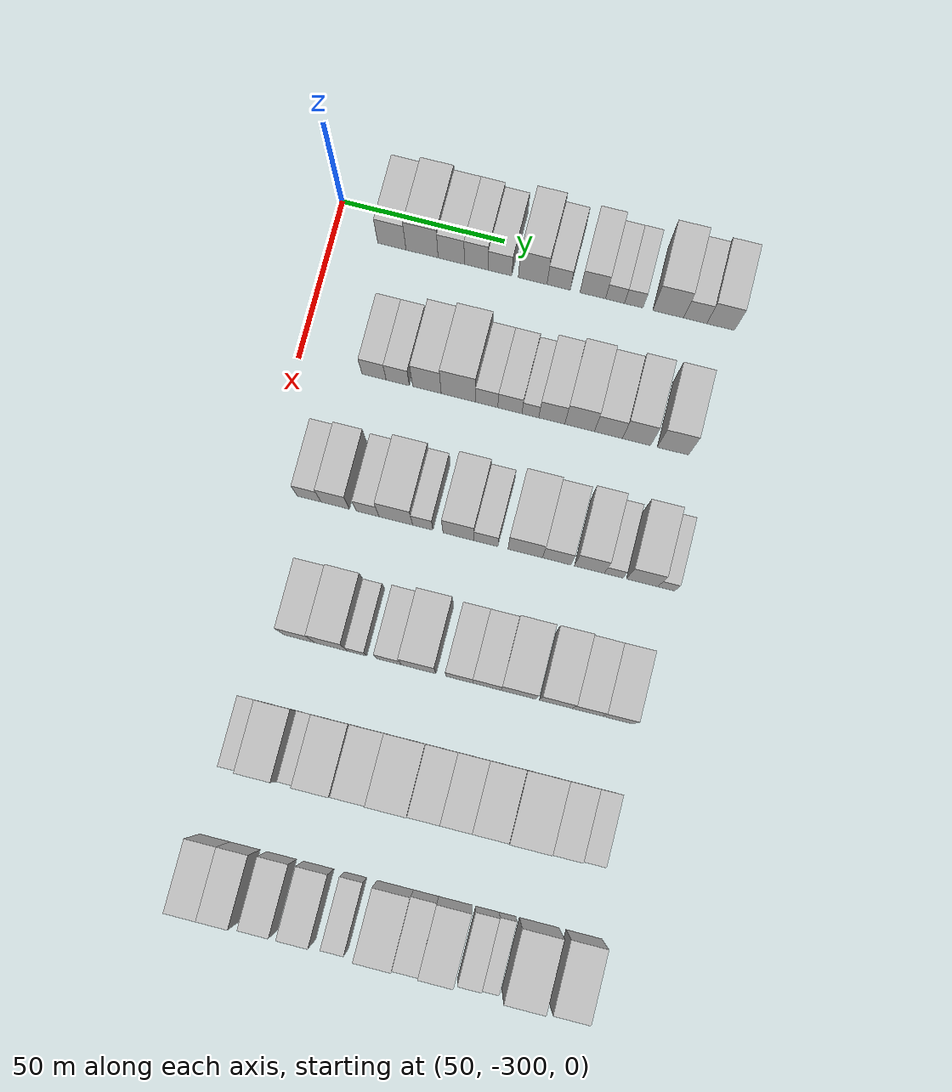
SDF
<sdf version="1.6">
 <world name="default">
  <model name="building_38">
   <static>1</static>
   <pose>50.0000 -282.0575 0 0.000000 0.000000 0.000000</pose>
   <link name="link">
    <pose>0 0 9.00 0 0 0</pose>
    <collision name="collision"><geometry><box><size>20.0000 8.7010 18.0000</size></box></geometry></collision>
    <visual name="visual">
     <cast_shadows>0</cast_shadows>
     <geometry><box><size>20.0000 8.7010 18.0000</size></box></geometry>
     <material>
      <script>
       <uri>model://HANNAS_wall/materials/scripts</uri>
       <uri>model://HANNAS_wall/materials/textures</uri>
       <name>vrc/HANNAS_wall</name>
      </script>
     </material>
    </visual>
   </link>
  </model>
  <model name="building_39">
   <static>1</static>
   <pose>50.0000 -272.7691 0 0.000000 0.000000 0.000000</pose>
   <link name="link">
    <pose>0 0 10.50 0 0 0</pose>
    <collision name="collision"><geometry><box><size>20.0000 9.8757 21.0000</size></box></geometry></collision>
    <visual name="visual">
     <cast_shadows>0</cast_shadows>
     <geometry><box><size>20.0000 9.8757 21.0000</size></box></geometry>
     <material>
      <script>
       <uri>model://HANNAS_wall/materials/scripts</uri>
       <uri>model://HANNAS_wall/materials/textures</uri>
       <name>vrc/HANNAS_wall</name>
      </script>
     </material>
    </visual>
   </link>
  </model>
  <model name="building_40">
   <static>1</static>
   <pose>50.0000 -263.8020 0 0.000000 0.000000 0.000000</pose>
   <link name="link">
    <pose>0 0 9.00 0 0 0</pose>
    <collision name="collision"><geometry><box><size>20.0000 8.0586 18.0000</size></box></geometry></collision>
    <visual name="visual">
     <cast_shadows>0</cast_shadows>
     <geometry><box><size>20.0000 8.0586 18.0000</size></box></geometry>
     <material>
      <script>
       <uri>model://HANNAS_wall/materials/scripts</uri>
       <uri>model://HANNAS_wall/materials/textures</uri>
       <name>vrc/HANNAS_wall</name>
      </script>
     </material>
    </visual>
   </link>
  </model>
  <model name="building_41">
   <static>1</static>
   <pose>50.0000 -256.1643 0 0.000000 0.000000 0.000000</pose>
   <link name="link">
    <pose>0 0 9.00 0 0 0</pose>
    <collision name="collision"><geometry><box><size>20.0000 7.2168 18.0000</size></box></geometry></collision>
    <visual name="visual">
     <cast_shadows>0</cast_shadows>
     <geometry><box><size>20.0000 7.2168 18.0000</size></box></geometry>
     <material>
      <script>
       <uri>model://HANNAS_wall/materials/scripts</uri>
       <uri>model://HANNAS_wall/materials/textures</uri>
       <name>vrc/HANNAS_wall</name>
      </script>
     </material>
    </visual>
   </link>
  </model>
  <model name="building_42">
   <static>1</static>
   <pose>50.0000 -248.8913 0 0.000000 0.000000 0.000000</pose>
   <link name="link">
    <pose>0 0 7.50 0 0 0</pose>
    <collision name="collision"><geometry><box><size>20.0000 7.3291 15.0000</size></box></geometry></collision>
    <visual name="visual">
     <cast_shadows>0</cast_shadows>
     <geometry><box><size>20.0000 7.3291 15.0000</size></box></geometry>
     <material>
      <script>
       <uri>model://HANNAS_wall/materials/scripts</uri>
       <uri>model://HANNAS_wall/materials/textures</uri>
       <name>vrc/HANNAS_wall</name>
      </script>
     </material>
    </visual>
   </link>
  </model>
  <model name="building_43">
   <static>1</static>
   <pose>50.0000 -238.8344 0 0.000000 0.000000 0.000000</pose>
   <link name="link">
    <pose>0 0 10.50 0 0 0</pose>
    <collision name="collision"><geometry><box><size>20.0000 8.7847 21.0000</size></box></geometry></collision>
    <visual name="visual">
     <cast_shadows>0</cast_shadows>
     <geometry><box><size>20.0000 8.7847 21.0000</size></box></geometry>
     <material>
      <script>
       <uri>model://HANNAS_wall/materials/scripts</uri>
       <uri>model://HANNAS_wall/materials/textures</uri>
       <name>vrc/HANNAS_wall</name>
      </script>
     </material>
    </visual>
   </link>
  </model>
  <model name="building_44">
   <static>1</static>
   <pose>50.0000 -230.8882 0 0.000000 0.000000 0.000000</pose>
   <link name="link">
    <pose>0 0 7.50 0 0 0</pose>
    <collision name="collision"><geometry><box><size>20.0000 7.1078 15.0000</size></box></geometry></collision>
    <visual name="visual">
     <cast_shadows>0</cast_shadows>
     <geometry><box><size>20.0000 7.1078 15.0000</size></box></geometry>
     <material>
      <script>
       <uri>model://HANNAS_wall/materials/scripts</uri>
       <uri>model://HANNAS_wall/materials/textures</uri>
       <name>vrc/HANNAS_wall</name>
      </script>
     </material>
    </visual>
   </link>
  </model>
  <model name="building_45">
   <static>1</static>
   <pose>50.0000 -220.4508 0 0.000000 0.000000 0.000000</pose>
   <link name="link">
    <pose>0 0 9.00 0 0 0</pose>
    <collision name="collision"><geometry><box><size>20.0000 7.7671 18.0000</size></box></geometry></collision>
    <visual name="visual">
     <cast_shadows>0</cast_shadows>
     <geometry><box><size>20.0000 7.7671 18.0000</size></box></geometry>
     <material>
      <script>
       <uri>model://HANNAS_wall/materials/scripts</uri>
       <uri>model://HANNAS_wall/materials/textures</uri>
       <name>vrc/HANNAS_wall</name>
      </script>
     </material>
    </visual>
   </link>
  </model>
  <model name="building_46">
   <static>1</static>
   <pose>50.0000 -213.6460 0 0.000000 0.000000 0.000000</pose>
   <link name="link">
    <pose>0 0 6.00 0 0 0</pose>
    <collision name="collision"><geometry><box><size>20.0000 5.8425 12.0000</size></box></geometry></collision>
    <visual name="visual">
     <cast_shadows>0</cast_shadows>
     <geometry><box><size>20.0000 5.8425 12.0000</size></box></geometry>
     <material>
      <script>
       <uri>model://HANNAS_wall/materials/scripts</uri>
       <uri>model://HANNAS_wall/materials/textures</uri>
       <name>vrc/HANNAS_wall</name>
      </script>
     </material>
    </visual>
   </link>
  </model>
  <model name="building_47">
   <static>1</static>
   <pose>50.0000 -207.9243 0 0.000000 0.000000 0.000000</pose>
   <link name="link">
    <pose>0 0 6.00 0 0 0</pose>
    <collision name="collision"><geometry><box><size>20.0000 5.6009 12.0000</size></box></geometry></collision>
    <visual name="visual">
     <cast_shadows>0</cast_shadows>
     <geometry><box><size>20.0000 5.6009 12.0000</size></box></geometry>
     <material>
      <script>
       <uri>model://HANNAS_wall/materials/scripts</uri>
       <uri>model://HANNAS_wall/materials/textures</uri>
       <name>vrc/HANNAS_wall</name>
      </script>
     </material>
    </visual>
   </link>
  </model>
  <model name="building_48">
   <static>1</static>
   <pose>50.0000 -197.4473 0 0.000000 0.000000 0.000000</pose>
   <link name="link">
    <pose>0 0 10.50 0 0 0</pose>
    <collision name="collision"><geometry><box><size>20.0000 9.3530 21.0000</size></box></geometry></collision>
    <visual name="visual">
     <cast_shadows>0</cast_shadows>
     <geometry><box><size>20.0000 9.3530 21.0000</size></box></geometry>
     <material>
      <script>
       <uri>model://HANNAS_wall/materials/scripts</uri>
       <uri>model://HANNAS_wall/materials/textures</uri>
       <name>vrc/HANNAS_wall</name>
      </script>
     </material>
    </visual>
   </link>
  </model>
  <model name="building_49">
   <static>1</static>
   <pose>50.0000 -189.2440 0 0.000000 0.000000 0.000000</pose>
   <link name="link">
    <pose>0 0 7.50 0 0 0</pose>
    <collision name="collision"><geometry><box><size>20.0000 7.0538 15.0000</size></box></geometry></collision>
    <visual name="visual">
     <cast_shadows>0</cast_shadows>
     <geometry><box><size>20.0000 7.0538 15.0000</size></box></geometry>
     <material>
      <script>
       <uri>model://HANNAS_wall/materials/scripts</uri>
       <uri>model://HANNAS_wall/materials/textures</uri>
       <name>vrc/HANNAS_wall</name>
      </script>
     </material>
    </visual>
   </link>
  </model>
  <model name="building_50">
   <static>1</static>
   <pose>50.0000 -181.5211 0 0.000000 0.000000 0.000000</pose>
   <link name="link">
    <pose>0 0 9.00 0 0 0</pose>
    <collision name="collision"><geometry><box><size>20.0000 8.3919 18.0000</size></box></geometry></collision>
    <visual name="visual">
     <cast_shadows>0</cast_shadows>
     <geometry><box><size>20.0000 8.3919 18.0000</size></box></geometry>
     <material>
      <script>
       <uri>model://HANNAS_wall/materials/scripts</uri>
       <uri>model://HANNAS_wall/materials/textures</uri>
       <name>vrc/HANNAS_wall</name>
      </script>
     </material>
    </visual>
   </link>
  </model>
  <model name="building_173">
   <static>1</static>
   <pose>90.0000 -276.9165 0 0.000000 0.000000 0.000000</pose>
   <link name="link">
    <pose>0 0 7.50 0 0 0</pose>
    <collision name="collision"><geometry><box><size>20.0000 7.3313 15.0000</size></box></geometry></collision>
    <visual name="visual">
     <cast_shadows>0</cast_shadows>
     <geometry><box><size>20.0000 7.3313 15.0000</size></box></geometry>
     <material>
      <script>
       <uri>model://HANNAS_wall/materials/scripts</uri>
       <uri>model://HANNAS_wall/materials/textures</uri>
       <name>vrc/HANNAS_wall</name>
      </script>
     </material>
    </visual>
   </link>
  </model>
  <model name="building_174">
   <static>1</static>
   <pose>90.0000 -269.7157 0 0.000000 0.000000 0.000000</pose>
   <link name="link">
    <pose>0 0 7.50 0 0 0</pose>
    <collision name="collision"><geometry><box><size>20.0000 7.0705 15.0000</size></box></geometry></collision>
    <visual name="visual">
     <cast_shadows>0</cast_shadows>
     <geometry><box><size>20.0000 7.0705 15.0000</size></box></geometry>
     <material>
      <script>
       <uri>model://HANNAS_wall/materials/scripts</uri>
       <uri>model://HANNAS_wall/materials/textures</uri>
       <name>vrc/HANNAS_wall</name>
      </script>
     </material>
    </visual>
   </link>
  </model>
  <model name="building_175">
   <static>1</static>
   <pose>90.0000 -260.8655 0 0.000000 0.000000 0.000000</pose>
   <link name="link">
    <pose>0 0 10.50 0 0 0</pose>
    <collision name="collision"><geometry><box><size>20.0000 8.6299 21.0000</size></box></geometry></collision>
    <visual name="visual">
     <cast_shadows>0</cast_shadows>
     <geometry><box><size>20.0000 8.6299 21.0000</size></box></geometry>
     <material>
      <script>
       <uri>model://HANNAS_wall/materials/scripts</uri>
       <uri>model://HANNAS_wall/materials/textures</uri>
       <name>vrc/HANNAS_wall</name>
      </script>
     </material>
    </visual>
   </link>
  </model>
  <model name="building_176">
   <static>1</static>
   <pose>90.0000 -251.3390 0 0.000000 0.000000 0.000000</pose>
   <link name="link">
    <pose>0 0 12.00 0 0 0</pose>
    <collision name="collision"><geometry><box><size>20.0000 10.4230 24.0000</size></box></geometry></collision>
    <visual name="visual">
     <cast_shadows>0</cast_shadows>
     <geometry><box><size>20.0000 10.4230 24.0000</size></box></geometry>
     <material>
      <script>
       <uri>model://HANNAS_wall/materials/scripts</uri>
       <uri>model://HANNAS_wall/materials/textures</uri>
       <name>vrc/HANNAS_wall</name>
      </script>
     </material>
    </visual>
   </link>
  </model>
  <model name="building_177">
   <static>1</static>
   <pose>90.0000 -242.7725 0 0.000000 0.000000 0.000000</pose>
   <link name="link">
    <pose>0 0 7.50 0 0 0</pose>
    <collision name="collision"><geometry><box><size>20.0000 6.7100 15.0000</size></box></geometry></collision>
    <visual name="visual">
     <cast_shadows>0</cast_shadows>
     <geometry><box><size>20.0000 6.7100 15.0000</size></box></geometry>
     <material>
      <script>
       <uri>model://HANNAS_wall/materials/scripts</uri>
       <uri>model://HANNAS_wall/materials/textures</uri>
       <name>vrc/HANNAS_wall</name>
      </script>
     </material>
    </visual>
   </link>
  </model>
  <model name="building_178">
   <static>1</static>
   <pose>90.0000 -235.7515 0 0.000000 0.000000 0.000000</pose>
   <link name="link">
    <pose>0 0 7.50 0 0 0</pose>
    <collision name="collision"><geometry><box><size>20.0000 7.3321 15.0000</size></box></geometry></collision>
    <visual name="visual">
     <cast_shadows>0</cast_shadows>
     <geometry><box><size>20.0000 7.3321 15.0000</size></box></geometry>
     <material>
      <script>
       <uri>model://HANNAS_wall/materials/scripts</uri>
       <uri>model://HANNAS_wall/materials/textures</uri>
       <name>vrc/HANNAS_wall</name>
      </script>
     </material>
    </visual>
   </link>
  </model>
  <model name="building_179">
   <static>1</static>
   <pose>90.0000 -229.5676 0 0.000000 0.000000 0.000000</pose>
   <link name="link">
    <pose>0 0 6.00 0 0 0</pose>
    <collision name="collision"><geometry><box><size>20.0000 5.0358 12.0000</size></box></geometry></collision>
    <visual name="visual">
     <cast_shadows>0</cast_shadows>
     <geometry><box><size>20.0000 5.0358 12.0000</size></box></geometry>
     <material>
      <script>
       <uri>model://HANNAS_wall/materials/scripts</uri>
       <uri>model://HANNAS_wall/materials/textures</uri>
       <name>vrc/HANNAS_wall</name>
      </script>
     </material>
    </visual>
   </link>
  </model>
  <model name="building_180">
   <static>1</static>
   <pose>90.0000 -223.1126 0 0.000000 0.000000 0.000000</pose>
   <link name="link">
    <pose>0 0 9.00 0 0 0</pose>
    <collision name="collision"><geometry><box><size>20.0000 7.8741 18.0000</size></box></geometry></collision>
    <visual name="visual">
     <cast_shadows>0</cast_shadows>
     <geometry><box><size>20.0000 7.8741 18.0000</size></box></geometry>
     <material>
      <script>
       <uri>model://HANNAS_wall/materials/scripts</uri>
       <uri>model://HANNAS_wall/materials/textures</uri>
       <name>vrc/HANNAS_wall</name>
      </script>
     </material>
    </visual>
   </link>
  </model>
  <model name="building_181">
   <static>1</static>
   <pose>90.0000 -214.7060 0 0.000000 0.000000 0.000000</pose>
   <link name="link">
    <pose>0 0 10.50 0 0 0</pose>
    <collision name="collision"><geometry><box><size>20.0000 8.9390 21.0000</size></box></geometry></collision>
    <visual name="visual">
     <cast_shadows>0</cast_shadows>
     <geometry><box><size>20.0000 8.9390 21.0000</size></box></geometry>
     <material>
      <script>
       <uri>model://HANNAS_wall/materials/scripts</uri>
       <uri>model://HANNAS_wall/materials/textures</uri>
       <name>vrc/HANNAS_wall</name>
      </script>
     </material>
    </visual>
   </link>
  </model>
  <model name="building_182">
   <static>1</static>
   <pose>90.0000 -206.0315 0 0.000000 0.000000 0.000000</pose>
   <link name="link">
    <pose>0 0 9.00 0 0 0</pose>
    <collision name="collision"><geometry><box><size>20.0000 8.4101 18.0000</size></box></geometry></collision>
    <visual name="visual">
     <cast_shadows>0</cast_shadows>
     <geometry><box><size>20.0000 8.4101 18.0000</size></box></geometry>
     <material>
      <script>
       <uri>model://HANNAS_wall/materials/scripts</uri>
       <uri>model://HANNAS_wall/materials/textures</uri>
       <name>vrc/HANNAS_wall</name>
      </script>
     </material>
    </visual>
   </link>
  </model>
  <model name="building_183">
   <static>1</static>
   <pose>90.0000 -197.5775 0 0.000000 0.000000 0.000000</pose>
   <link name="link">
    <pose>0 0 10.50 0 0 0</pose>
    <collision name="collision"><geometry><box><size>20.0000 8.4978 21.0000</size></box></geometry></collision>
    <visual name="visual">
     <cast_shadows>0</cast_shadows>
     <geometry><box><size>20.0000 8.4978 21.0000</size></box></geometry>
     <material>
      <script>
       <uri>model://HANNAS_wall/materials/scripts</uri>
       <uri>model://HANNAS_wall/materials/textures</uri>
       <name>vrc/HANNAS_wall</name>
      </script>
     </material>
    </visual>
   </link>
  </model>
  <model name="building_184">
   <static>1</static>
   <pose>90.0000 -186.6508 0 0.000000 0.000000 0.000000</pose>
   <link name="link">
    <pose>0 0 10.50 0 0 0</pose>
    <collision name="collision"><geometry><box><size>20.0000 9.3556 21.0000</size></box></geometry></collision>
    <visual name="visual">
     <cast_shadows>0</cast_shadows>
     <geometry><box><size>20.0000 9.3556 21.0000</size></box></geometry>
     <material>
      <script>
       <uri>model://HANNAS_wall/materials/scripts</uri>
       <uri>model://HANNAS_wall/materials/textures</uri>
       <name>vrc/HANNAS_wall</name>
      </script>
     </material>
    </visual>
   </link>
  </model>
  <model name="building_314">
   <static>1</static>
   <pose>130.0000 -285.7457 0 0.000000 0.000000 0.000000</pose>
   <link name="link">
    <pose>0 0 7.50 0 0 0</pose>
    <collision name="collision"><geometry><box><size>20.0000 7.1118 15.0000</size></box></geometry></collision>
    <visual name="visual">
     <cast_shadows>0</cast_shadows>
     <geometry><box><size>20.0000 7.1118 15.0000</size></box></geometry>
     <material>
      <script>
       <uri>model://HANNAS_wall/materials/scripts</uri>
       <uri>model://HANNAS_wall/materials/textures</uri>
       <name>vrc/HANNAS_wall</name>
      </script>
     </material>
    </visual>
   </link>
  </model>
  <model name="building_315">
   <static>1</static>
   <pose>130.0000 -277.9374 0 0.000000 0.000000 0.000000</pose>
   <link name="link">
    <pose>0 0 9.00 0 0 0</pose>
    <collision name="collision"><geometry><box><size>20.0000 8.5047 18.0000</size></box></geometry></collision>
    <visual name="visual">
     <cast_shadows>0</cast_shadows>
     <geometry><box><size>20.0000 8.5047 18.0000</size></box></geometry>
     <material>
      <script>
       <uri>model://HANNAS_wall/materials/scripts</uri>
       <uri>model://HANNAS_wall/materials/textures</uri>
       <name>vrc/HANNAS_wall</name>
      </script>
     </material>
    </visual>
   </link>
  </model>
  <model name="building_316">
   <static>1</static>
   <pose>130.0000 -268.2378 0 0.000000 0.000000 0.000000</pose>
   <link name="link">
    <pose>0 0 7.50 0 0 0</pose>
    <collision name="collision"><geometry><box><size>20.0000 6.8946 15.0000</size></box></geometry></collision>
    <visual name="visual">
     <cast_shadows>0</cast_shadows>
     <geometry><box><size>20.0000 6.8946 15.0000</size></box></geometry>
     <material>
      <script>
       <uri>model://HANNAS_wall/materials/scripts</uri>
       <uri>model://HANNAS_wall/materials/textures</uri>
       <name>vrc/HANNAS_wall</name>
      </script>
     </material>
    </visual>
   </link>
  </model>
  <model name="building_317">
   <static>1</static>
   <pose>130.0000 -259.7645 0 0.000000 0.000000 0.000000</pose>
   <link name="link">
    <pose>0 0 10.50 0 0 0</pose>
    <collision name="collision"><geometry><box><size>20.0000 10.0520 21.0000</size></box></geometry></collision>
    <visual name="visual">
     <cast_shadows>0</cast_shadows>
     <geometry><box><size>20.0000 10.0520 21.0000</size></box></geometry>
     <material>
      <script>
       <uri>model://HANNAS_wall/materials/scripts</uri>
       <uri>model://HANNAS_wall/materials/textures</uri>
       <name>vrc/HANNAS_wall</name>
      </script>
     </material>
    </visual>
   </link>
  </model>
  <model name="building_318">
   <static>1</static>
   <pose>130.0000 -251.6995 0 0.000000 0.000000 0.000000</pose>
   <link name="link">
    <pose>0 0 7.50 0 0 0</pose>
    <collision name="collision"><geometry><box><size>20.0000 6.0781 15.0000</size></box></geometry></collision>
    <visual name="visual">
     <cast_shadows>0</cast_shadows>
     <geometry><box><size>20.0000 6.0781 15.0000</size></box></geometry>
     <material>
      <script>
       <uri>model://HANNAS_wall/materials/scripts</uri>
       <uri>model://HANNAS_wall/materials/textures</uri>
       <name>vrc/HANNAS_wall</name>
      </script>
     </material>
    </visual>
   </link>
  </model>
  <model name="building_319">
   <static>1</static>
   <pose>130.0000 -241.0220 0 0.000000 0.000000 0.000000</pose>
   <link name="link">
    <pose>0 0 10.50 0 0 0</pose>
    <collision name="collision"><geometry><box><size>20.0000 9.2767 21.0000</size></box></geometry></collision>
    <visual name="visual">
     <cast_shadows>0</cast_shadows>
     <geometry><box><size>20.0000 9.2767 21.0000</size></box></geometry>
     <material>
      <script>
       <uri>model://HANNAS_wall/materials/scripts</uri>
       <uri>model://HANNAS_wall/materials/textures</uri>
       <name>vrc/HANNAS_wall</name>
      </script>
     </material>
    </visual>
   </link>
  </model>
  <model name="building_320">
   <static>1</static>
   <pose>130.0000 -232.8249 0 0.000000 0.000000 0.000000</pose>
   <link name="link">
    <pose>0 0 7.50 0 0 0</pose>
    <collision name="collision"><geometry><box><size>20.0000 7.1175 15.0000</size></box></geometry></collision>
    <visual name="visual">
     <cast_shadows>0</cast_shadows>
     <geometry><box><size>20.0000 7.1175 15.0000</size></box></geometry>
     <material>
      <script>
       <uri>model://HANNAS_wall/materials/scripts</uri>
       <uri>model://HANNAS_wall/materials/textures</uri>
       <name>vrc/HANNAS_wall</name>
      </script>
     </material>
    </visual>
   </link>
  </model>
  <model name="building_321">
   <static>1</static>
   <pose>130.0000 -221.1172 0 0.000000 0.000000 0.000000</pose>
   <link name="link">
    <pose>0 0 10.50 0 0 0</pose>
    <collision name="collision"><geometry><box><size>20.0000 10.2979 21.0000</size></box></geometry></collision>
    <visual name="visual">
     <cast_shadows>0</cast_shadows>
     <geometry><box><size>20.0000 10.2979 21.0000</size></box></geometry>
     <material>
      <script>
       <uri>model://HANNAS_wall/materials/scripts</uri>
       <uri>model://HANNAS_wall/materials/textures</uri>
       <name>vrc/HANNAS_wall</name>
      </script>
     </material>
    </visual>
   </link>
  </model>
  <model name="building_322">
   <static>1</static>
   <pose>130.0000 -211.7304 0 0.000000 0.000000 0.000000</pose>
   <link name="link">
    <pose>0 0 9.00 0 0 0</pose>
    <collision name="collision"><geometry><box><size>20.0000 8.4757 18.0000</size></box></geometry></collision>
    <visual name="visual">
     <cast_shadows>0</cast_shadows>
     <geometry><box><size>20.0000 8.4757 18.0000</size></box></geometry>
     <material>
      <script>
       <uri>model://HANNAS_wall/materials/scripts</uri>
       <uri>model://HANNAS_wall/materials/textures</uri>
       <name>vrc/HANNAS_wall</name>
      </script>
     </material>
    </visual>
   </link>
  </model>
  <model name="building_323">
   <static>1</static>
   <pose>130.0000 -202.0742 0 0.000000 0.000000 0.000000</pose>
   <link name="link">
    <pose>0 0 10.50 0 0 0</pose>
    <collision name="collision"><geometry><box><size>20.0000 8.8368 21.0000</size></box></geometry></collision>
    <visual name="visual">
     <cast_shadows>0</cast_shadows>
     <geometry><box><size>20.0000 8.8368 21.0000</size></box></geometry>
     <material>
      <script>
       <uri>model://HANNAS_wall/materials/scripts</uri>
       <uri>model://HANNAS_wall/materials/textures</uri>
       <name>vrc/HANNAS_wall</name>
      </script>
     </material>
    </visual>
   </link>
  </model>
  <model name="building_324">
   <static>1</static>
   <pose>130.0000 -194.8472 0 0.000000 0.000000 0.000000</pose>
   <link name="link">
    <pose>0 0 6.00 0 0 0</pose>
    <collision name="collision"><geometry><box><size>20.0000 5.6173 12.0000</size></box></geometry></collision>
    <visual name="visual">
     <cast_shadows>0</cast_shadows>
     <geometry><box><size>20.0000 5.6173 12.0000</size></box></geometry>
     <material>
      <script>
       <uri>model://HANNAS_wall/materials/scripts</uri>
       <uri>model://HANNAS_wall/materials/textures</uri>
       <name>vrc/HANNAS_wall</name>
      </script>
     </material>
    </visual>
   </link>
  </model>
  <model name="building_325">
   <static>1</static>
   <pose>130.0000 -186.4021 0 0.000000 0.000000 0.000000</pose>
   <link name="link">
    <pose>0 0 10.50 0 0 0</pose>
    <collision name="collision"><geometry><box><size>20.0000 9.2729 21.0000</size></box></geometry></collision>
    <visual name="visual">
     <cast_shadows>0</cast_shadows>
     <geometry><box><size>20.0000 9.2729 21.0000</size></box></geometry>
     <material>
      <script>
       <uri>model://HANNAS_wall/materials/scripts</uri>
       <uri>model://HANNAS_wall/materials/textures</uri>
       <name>vrc/HANNAS_wall</name>
      </script>
     </material>
    </visual>
   </link>
  </model>
  <model name="building_326">
   <static>1</static>
   <pose>130.0000 -179.2579 0 0.000000 0.000000 0.000000</pose>
   <link name="link">
    <pose>0 0 6.00 0 0 0</pose>
    <collision name="collision"><geometry><box><size>20.0000 5.0154 12.0000</size></box></geometry></collision>
    <visual name="visual">
     <cast_shadows>0</cast_shadows>
     <geometry><box><size>20.0000 5.0154 12.0000</size></box></geometry>
     <material>
      <script>
       <uri>model://HANNAS_wall/materials/scripts</uri>
       <uri>model://HANNAS_wall/materials/textures</uri>
       <name>vrc/HANNAS_wall</name>
      </script>
     </material>
    </visual>
   </link>
  </model>
  <model name="building_454">
   <static>1</static>
   <pose>170.0000 -277.6546 0 0.000000 0.000000 0.000000</pose>
   <link name="link">
    <pose>0 0 10.50 0 0 0</pose>
    <collision name="collision"><geometry><box><size>20.0000 9.0244 21.0000</size></box></geometry></collision>
    <visual name="visual">
     <cast_shadows>0</cast_shadows>
     <geometry><box><size>20.0000 9.0244 21.0000</size></box></geometry>
     <material>
      <script>
       <uri>model://HANNAS_wall/materials/scripts</uri>
       <uri>model://HANNAS_wall/materials/textures</uri>
       <name>vrc/HANNAS_wall</name>
      </script>
     </material>
    </visual>
   </link>
  </model>
  <model name="building_455">
   <static>1</static>
   <pose>170.0000 -268.2521 0 0.000000 0.000000 0.000000</pose>
   <link name="link">
    <pose>0 0 12.00 0 0 0</pose>
    <collision name="collision"><geometry><box><size>20.0000 9.7805 24.0000</size></box></geometry></collision>
    <visual name="visual">
     <cast_shadows>0</cast_shadows>
     <geometry><box><size>20.0000 9.7805 24.0000</size></box></geometry>
     <material>
      <script>
       <uri>model://HANNAS_wall/materials/scripts</uri>
       <uri>model://HANNAS_wall/materials/textures</uri>
       <name>vrc/HANNAS_wall</name>
      </script>
     </material>
    </visual>
   </link>
  </model>
  <model name="building_456">
   <static>1</static>
   <pose>170.0000 -260.5868 0 0.000000 0.000000 0.000000</pose>
   <link name="link">
    <pose>0 0 6.00 0 0 0</pose>
    <collision name="collision"><geometry><box><size>20.0000 5.5503 12.0000</size></box></geometry></collision>
    <visual name="visual">
     <cast_shadows>0</cast_shadows>
     <geometry><box><size>20.0000 5.5503 12.0000</size></box></geometry>
     <material>
      <script>
       <uri>model://HANNAS_wall/materials/scripts</uri>
       <uri>model://HANNAS_wall/materials/textures</uri>
       <name>vrc/HANNAS_wall</name>
      </script>
     </material>
    </visual>
   </link>
  </model>
  <model name="building_457">
   <static>1</static>
   <pose>170.0000 -251.1173 0 0.000000 0.000000 0.000000</pose>
   <link name="link">
    <pose>0 0 7.50 0 0 0</pose>
    <collision name="collision"><geometry><box><size>20.0000 7.3888 15.0000</size></box></geometry></collision>
    <visual name="visual">
     <cast_shadows>0</cast_shadows>
     <geometry><box><size>20.0000 7.3888 15.0000</size></box></geometry>
     <material>
      <script>
       <uri>model://HANNAS_wall/materials/scripts</uri>
       <uri>model://HANNAS_wall/materials/textures</uri>
       <name>vrc/HANNAS_wall</name>
      </script>
     </material>
    </visual>
   </link>
  </model>
  <model name="building_458">
   <static>1</static>
   <pose>170.0000 -242.3686 0 0.000000 0.000000 0.000000</pose>
   <link name="link">
    <pose>0 0 12.00 0 0 0</pose>
    <collision name="collision"><geometry><box><size>20.0000 10.1086 24.0000</size></box></geometry></collision>
    <visual name="visual">
     <cast_shadows>0</cast_shadows>
     <geometry><box><size>20.0000 10.1086 24.0000</size></box></geometry>
     <material>
      <script>
       <uri>model://HANNAS_wall/materials/scripts</uri>
       <uri>model://HANNAS_wall/materials/textures</uri>
       <name>vrc/HANNAS_wall</name>
      </script>
     </material>
    </visual>
   </link>
  </model>
  <model name="building_459">
   <static>1</static>
   <pose>170.0000 -230.4181 0 0.000000 0.000000 0.000000</pose>
   <link name="link">
    <pose>0 0 9.00 0 0 0</pose>
    <collision name="collision"><geometry><box><size>20.0000 7.7923 18.0000</size></box></geometry></collision>
    <visual name="visual">
     <cast_shadows>0</cast_shadows>
     <geometry><box><size>20.0000 7.7923 18.0000</size></box></geometry>
     <material>
      <script>
       <uri>model://HANNAS_wall/materials/scripts</uri>
       <uri>model://HANNAS_wall/materials/textures</uri>
       <name>vrc/HANNAS_wall</name>
      </script>
     </material>
    </visual>
   </link>
  </model>
  <model name="building_460">
   <static>1</static>
   <pose>170.0000 -222.3827 0 0.000000 0.000000 0.000000</pose>
   <link name="link">
    <pose>0 0 9.00 0 0 0</pose>
    <collision name="collision"><geometry><box><size>20.0000 8.2785 18.0000</size></box></geometry></collision>
    <visual name="visual">
     <cast_shadows>0</cast_shadows>
     <geometry><box><size>20.0000 8.2785 18.0000</size></box></geometry>
     <material>
      <script>
       <uri>model://HANNAS_wall/materials/scripts</uri>
       <uri>model://HANNAS_wall/materials/textures</uri>
       <name>vrc/HANNAS_wall</name>
      </script>
     </material>
    </visual>
   </link>
  </model>
  <model name="building_461">
   <static>1</static>
   <pose>170.0000 -213.1231 0 0.000000 0.000000 0.000000</pose>
   <link name="link">
    <pose>0 0 10.50 0 0 0</pose>
    <collision name="collision"><geometry><box><size>20.0000 10.2407 21.0000</size></box></geometry></collision>
    <visual name="visual">
     <cast_shadows>0</cast_shadows>
     <geometry><box><size>20.0000 10.2407 21.0000</size></box></geometry>
     <material>
      <script>
       <uri>model://HANNAS_wall/materials/scripts</uri>
       <uri>model://HANNAS_wall/materials/textures</uri>
       <name>vrc/HANNAS_wall</name>
      </script>
     </material>
    </visual>
   </link>
  </model>
  <model name="building_462">
   <static>1</static>
   <pose>170.0000 -202.2179 0 0.000000 0.000000 0.000000</pose>
   <link name="link">
    <pose>0 0 10.50 0 0 0</pose>
    <collision name="collision"><geometry><box><size>20.0000 9.5697 21.0000</size></box></geometry></collision>
    <visual name="visual">
     <cast_shadows>0</cast_shadows>
     <geometry><box><size>20.0000 9.5697 21.0000</size></box></geometry>
     <material>
      <script>
       <uri>model://HANNAS_wall/materials/scripts</uri>
       <uri>model://HANNAS_wall/materials/textures</uri>
       <name>vrc/HANNAS_wall</name>
      </script>
     </material>
    </visual>
   </link>
  </model>
  <model name="building_463">
   <static>1</static>
   <pose>170.0000 -193.0830 0 0.000000 0.000000 0.000000</pose>
   <link name="link">
    <pose>0 0 9.00 0 0 0</pose>
    <collision name="collision"><geometry><box><size>20.0000 8.7000 18.0000</size></box></geometry></collision>
    <visual name="visual">
     <cast_shadows>0</cast_shadows>
     <geometry><box><size>20.0000 8.7000 18.0000</size></box></geometry>
     <material>
      <script>
       <uri>model://HANNAS_wall/materials/scripts</uri>
       <uri>model://HANNAS_wall/materials/textures</uri>
       <name>vrc/HANNAS_wall</name>
      </script>
     </material>
    </visual>
   </link>
  </model>
  <model name="building_464">
   <static>1</static>
   <pose>170.0000 -184.2569 0 0.000000 0.000000 0.000000</pose>
   <link name="link">
    <pose>0 0 9.00 0 0 0</pose>
    <collision name="collision"><geometry><box><size>20.0000 8.9522 18.0000</size></box></geometry></collision>
    <visual name="visual">
     <cast_shadows>0</cast_shadows>
     <geometry><box><size>20.0000 8.9522 18.0000</size></box></geometry>
     <material>
      <script>
       <uri>model://HANNAS_wall/materials/scripts</uri>
       <uri>model://HANNAS_wall/materials/textures</uri>
       <name>vrc/HANNAS_wall</name>
      </script>
     </material>
    </visual>
   </link>
  </model>
  <model name="building_587">
   <static>1</static>
   <pose>210.0000 -285.7715 0 0.000000 0.000000 0.000000</pose>
   <link name="link">
    <pose>0 0 6.00 0 0 0</pose>
    <collision name="collision"><geometry><box><size>20.0000 5.7685 12.0000</size></box></geometry></collision>
    <visual name="visual">
     <cast_shadows>0</cast_shadows>
     <geometry><box><size>20.0000 5.7685 12.0000</size></box></geometry>
     <material>
      <script>
       <uri>model://HANNAS_wall/materials/scripts</uri>
       <uri>model://HANNAS_wall/materials/textures</uri>
       <name>vrc/HANNAS_wall</name>
      </script>
     </material>
    </visual>
   </link>
  </model>
  <model name="building_588">
   <static>1</static>
   <pose>210.0000 -276.8301 0 0.000000 0.000000 0.000000</pose>
   <link name="link">
    <pose>0 0 12.00 0 0 0</pose>
    <collision name="collision"><geometry><box><size>20.0000 10.1142 24.0000</size></box></geometry></collision>
    <visual name="visual">
     <cast_shadows>0</cast_shadows>
     <geometry><box><size>20.0000 10.1142 24.0000</size></box></geometry>
     <material>
      <script>
       <uri>model://HANNAS_wall/materials/scripts</uri>
       <uri>model://HANNAS_wall/materials/textures</uri>
       <name>vrc/HANNAS_wall</name>
      </script>
     </material>
    </visual>
   </link>
  </model>
  <model name="building_589">
   <static>1</static>
   <pose>210.0000 -268.9589 0 0.000000 0.000000 0.000000</pose>
   <link name="link">
    <pose>0 0 6.00 0 0 0</pose>
    <collision name="collision"><geometry><box><size>20.0000 5.6284 12.0000</size></box></geometry></collision>
    <visual name="visual">
     <cast_shadows>0</cast_shadows>
     <geometry><box><size>20.0000 5.6284 12.0000</size></box></geometry>
     <material>
      <script>
       <uri>model://HANNAS_wall/materials/scripts</uri>
       <uri>model://HANNAS_wall/materials/textures</uri>
       <name>vrc/HANNAS_wall</name>
      </script>
     </material>
    </visual>
   </link>
  </model>
  <model name="building_590">
   <static>1</static>
   <pose>210.0000 -260.9521 0 0.000000 0.000000 0.000000</pose>
   <link name="link">
    <pose>0 0 12.00 0 0 0</pose>
    <collision name="collision"><geometry><box><size>20.0000 10.3852 24.0000</size></box></geometry></collision>
    <visual name="visual">
     <cast_shadows>0</cast_shadows>
     <geometry><box><size>20.0000 10.3852 24.0000</size></box></geometry>
     <material>
      <script>
       <uri>model://HANNAS_wall/materials/scripts</uri>
       <uri>model://HANNAS_wall/materials/textures</uri>
       <name>vrc/HANNAS_wall</name>
      </script>
     </material>
    </visual>
   </link>
  </model>
  <model name="building_591">
   <static>1</static>
   <pose>210.0000 -250.8604 0 0.000000 0.000000 0.000000</pose>
   <link name="link">
    <pose>0 0 10.50 0 0 0</pose>
    <collision name="collision"><geometry><box><size>20.0000 9.7982 21.0000</size></box></geometry></collision>
    <visual name="visual">
     <cast_shadows>0</cast_shadows>
     <geometry><box><size>20.0000 9.7982 21.0000</size></box></geometry>
     <material>
      <script>
       <uri>model://HANNAS_wall/materials/scripts</uri>
       <uri>model://HANNAS_wall/materials/textures</uri>
       <name>vrc/HANNAS_wall</name>
      </script>
     </material>
    </visual>
   </link>
  </model>
  <model name="building_592">
   <static>1</static>
   <pose>210.0000 -240.2281 0 0.000000 0.000000 0.000000</pose>
   <link name="link">
    <pose>0 0 12.00 0 0 0</pose>
    <collision name="collision"><geometry><box><size>20.0000 11.4664 24.0000</size></box></geometry></collision>
    <visual name="visual">
     <cast_shadows>0</cast_shadows>
     <geometry><box><size>20.0000 11.4664 24.0000</size></box></geometry>
     <material>
      <script>
       <uri>model://HANNAS_wall/materials/scripts</uri>
       <uri>model://HANNAS_wall/materials/textures</uri>
       <name>vrc/HANNAS_wall</name>
      </script>
     </material>
    </visual>
   </link>
  </model>
  <model name="building_593">
   <static>1</static>
   <pose>210.0000 -229.9660 0 0.000000 0.000000 0.000000</pose>
   <link name="link">
    <pose>0 0 10.50 0 0 0</pose>
    <collision name="collision"><geometry><box><size>20.0000 9.0577 21.0000</size></box></geometry></collision>
    <visual name="visual">
     <cast_shadows>0</cast_shadows>
     <geometry><box><size>20.0000 9.0577 21.0000</size></box></geometry>
     <material>
      <script>
       <uri>model://HANNAS_wall/materials/scripts</uri>
       <uri>model://HANNAS_wall/materials/textures</uri>
       <name>vrc/HANNAS_wall</name>
      </script>
     </material>
    </visual>
   </link>
  </model>
  <model name="building_594">
   <static>1</static>
   <pose>210.0000 -220.9655 0 0.000000 0.000000 0.000000</pose>
   <link name="link">
    <pose>0 0 10.50 0 0 0</pose>
    <collision name="collision"><geometry><box><size>20.0000 8.9433 21.0000</size></box></geometry></collision>
    <visual name="visual">
     <cast_shadows>0</cast_shadows>
     <geometry><box><size>20.0000 8.9433 21.0000</size></box></geometry>
     <material>
      <script>
       <uri>model://HANNAS_wall/materials/scripts</uri>
       <uri>model://HANNAS_wall/materials/textures</uri>
       <name>vrc/HANNAS_wall</name>
      </script>
     </material>
    </visual>
   </link>
  </model>
  <model name="building_595">
   <static>1</static>
   <pose>210.0000 -211.3873 0 0.000000 0.000000 0.000000</pose>
   <link name="link">
    <pose>0 0 10.50 0 0 0</pose>
    <collision name="collision"><geometry><box><size>20.0000 10.2131 21.0000</size></box></geometry></collision>
    <visual name="visual">
     <cast_shadows>0</cast_shadows>
     <geometry><box><size>20.0000 10.2131 21.0000</size></box></geometry>
     <material>
      <script>
       <uri>model://HANNAS_wall/materials/scripts</uri>
       <uri>model://HANNAS_wall/materials/textures</uri>
       <name>vrc/HANNAS_wall</name>
      </script>
     </material>
    </visual>
   </link>
  </model>
  <model name="building_596">
   <static>1</static>
   <pose>210.0000 -200.4384 0 0.000000 0.000000 0.000000</pose>
   <link name="link">
    <pose>0 0 12.00 0 0 0</pose>
    <collision name="collision"><geometry><box><size>20.0000 11.6847 24.0000</size></box></geometry></collision>
    <visual name="visual">
     <cast_shadows>0</cast_shadows>
     <geometry><box><size>20.0000 11.6847 24.0000</size></box></geometry>
     <material>
      <script>
       <uri>model://HANNAS_wall/materials/scripts</uri>
       <uri>model://HANNAS_wall/materials/textures</uri>
       <name>vrc/HANNAS_wall</name>
      </script>
     </material>
    </visual>
   </link>
  </model>
  <model name="building_597">
   <static>1</static>
   <pose>210.0000 -190.2937 0 0.000000 0.000000 0.000000</pose>
   <link name="link">
    <pose>0 0 10.50 0 0 0</pose>
    <collision name="collision"><geometry><box><size>20.0000 8.6047 21.0000</size></box></geometry></collision>
    <visual name="visual">
     <cast_shadows>0</cast_shadows>
     <geometry><box><size>20.0000 8.6047 21.0000</size></box></geometry>
     <material>
      <script>
       <uri>model://HANNAS_wall/materials/scripts</uri>
       <uri>model://HANNAS_wall/materials/textures</uri>
       <name>vrc/HANNAS_wall</name>
      </script>
     </material>
    </visual>
   </link>
  </model>
  <model name="building_598">
   <static>1</static>
   <pose>210.0000 -182.5594 0 0.000000 0.000000 0.000000</pose>
   <link name="link">
    <pose>0 0 7.50 0 0 0</pose>
    <collision name="collision"><geometry><box><size>20.0000 6.8640 15.0000</size></box></geometry></collision>
    <visual name="visual">
     <cast_shadows>0</cast_shadows>
     <geometry><box><size>20.0000 6.8640 15.0000</size></box></geometry>
     <material>
      <script>
       <uri>model://HANNAS_wall/materials/scripts</uri>
       <uri>model://HANNAS_wall/materials/textures</uri>
       <name>vrc/HANNAS_wall</name>
      </script>
     </material>
    </visual>
   </link>
  </model>
  <model name="building_718">
   <static>1</static>
   <pose>250.0000 -286.0653 0 0.000000 0.000000 0.000000</pose>
   <link name="link">
    <pose>0 0 10.50 0 0 0</pose>
    <collision name="collision"><geometry><box><size>20.0000 8.8757 21.0000</size></box></geometry></collision>
    <visual name="visual">
     <cast_shadows>0</cast_shadows>
     <geometry><box><size>20.0000 8.8757 21.0000</size></box></geometry>
     <material>
      <script>
       <uri>model://HANNAS_wall/materials/scripts</uri>
       <uri>model://HANNAS_wall/materials/textures</uri>
       <name>vrc/HANNAS_wall</name>
      </script>
     </material>
    </visual>
   </link>
  </model>
  <model name="building_719">
   <static>1</static>
   <pose>250.0000 -277.2219 0 0.000000 0.000000 0.000000</pose>
   <link name="link">
    <pose>0 0 10.50 0 0 0</pose>
    <collision name="collision"><geometry><box><size>20.0000 8.8111 21.0000</size></box></geometry></collision>
    <visual name="visual">
     <cast_shadows>0</cast_shadows>
     <geometry><box><size>20.0000 8.8111 21.0000</size></box></geometry>
     <material>
      <script>
       <uri>model://HANNAS_wall/materials/scripts</uri>
       <uri>model://HANNAS_wall/materials/textures</uri>
       <name>vrc/HANNAS_wall</name>
      </script>
     </material>
    </visual>
   </link>
  </model>
  <model name="building_720">
   <static>1</static>
   <pose>250.0000 -266.4925 0 0.000000 0.000000 0.000000</pose>
   <link name="link">
    <pose>0 0 9.00 0 0 0</pose>
    <collision name="collision"><geometry><box><size>20.0000 8.6477 18.0000</size></box></geometry></collision>
    <visual name="visual">
     <cast_shadows>0</cast_shadows>
     <geometry><box><size>20.0000 8.6477 18.0000</size></box></geometry>
     <material>
      <script>
       <uri>model://HANNAS_wall/materials/scripts</uri>
       <uri>model://HANNAS_wall/materials/textures</uri>
       <name>vrc/HANNAS_wall</name>
      </script>
     </material>
    </visual>
   </link>
  </model>
  <model name="building_721">
   <static>1</static>
   <pose>250.0000 -255.7383 0 0.000000 0.000000 0.000000</pose>
   <link name="link">
    <pose>0 0 9.00 0 0 0</pose>
    <collision name="collision"><geometry><box><size>20.0000 8.8607 18.0000</size></box></geometry></collision>
    <visual name="visual">
     <cast_shadows>0</cast_shadows>
     <geometry><box><size>20.0000 8.8607 18.0000</size></box></geometry>
     <material>
      <script>
       <uri>model://HANNAS_wall/materials/scripts</uri>
       <uri>model://HANNAS_wall/materials/textures</uri>
       <name>vrc/HANNAS_wall</name>
      </script>
     </material>
    </visual>
   </link>
  </model>
  <model name="building_722">
   <static>1</static>
   <pose>250.0000 -245.0509 0 0.000000 0.000000 0.000000</pose>
   <link name="link">
    <pose>0 0 7.50 0 0 0</pose>
    <collision name="collision"><geometry><box><size>20.0000 6.5140 15.0000</size></box></geometry></collision>
    <visual name="visual">
     <cast_shadows>0</cast_shadows>
     <geometry><box><size>20.0000 6.5140 15.0000</size></box></geometry>
     <material>
      <script>
       <uri>model://HANNAS_wall/materials/scripts</uri>
       <uri>model://HANNAS_wall/materials/textures</uri>
       <name>vrc/HANNAS_wall</name>
      </script>
     </material>
    </visual>
   </link>
  </model>
  <model name="building_723">
   <static>1</static>
   <pose>250.0000 -233.5595 0 0.000000 0.000000 0.000000</pose>
   <link name="link">
    <pose>0 0 10.50 0 0 0</pose>
    <collision name="collision"><geometry><box><size>20.0000 10.4690 21.0000</size></box></geometry></collision>
    <visual name="visual">
     <cast_shadows>0</cast_shadows>
     <geometry><box><size>20.0000 10.4690 21.0000</size></box></geometry>
     <material>
      <script>
       <uri>model://HANNAS_wall/materials/scripts</uri>
       <uri>model://HANNAS_wall/materials/textures</uri>
       <name>vrc/HANNAS_wall</name>
      </script>
     </material>
    </visual>
   </link>
  </model>
  <model name="building_724">
   <static>1</static>
   <pose>250.0000 -224.7168 0 0.000000 0.000000 0.000000</pose>
   <link name="link">
    <pose>0 0 9.00 0 0 0</pose>
    <collision name="collision"><geometry><box><size>20.0000 7.2164 18.0000</size></box></geometry></collision>
    <visual name="visual">
     <cast_shadows>0</cast_shadows>
     <geometry><box><size>20.0000 7.2164 18.0000</size></box></geometry>
     <material>
      <script>
       <uri>model://HANNAS_wall/materials/scripts</uri>
       <uri>model://HANNAS_wall/materials/textures</uri>
       <name>vrc/HANNAS_wall</name>
      </script>
     </material>
    </visual>
   </link>
  </model>
  <model name="building_725">
   <static>1</static>
   <pose>250.0000 -216.2495 0 0.000000 0.000000 0.000000</pose>
   <link name="link">
    <pose>0 0 10.50 0 0 0</pose>
    <collision name="collision"><geometry><box><size>20.0000 9.7181 21.0000</size></box></geometry></collision>
    <visual name="visual">
     <cast_shadows>0</cast_shadows>
     <geometry><box><size>20.0000 9.7181 21.0000</size></box></geometry>
     <material>
      <script>
       <uri>model://HANNAS_wall/materials/scripts</uri>
       <uri>model://HANNAS_wall/materials/textures</uri>
       <name>vrc/HANNAS_wall</name>
      </script>
     </material>
    </visual>
   </link>
  </model>
  <model name="building_726">
   <static>1</static>
   <pose>250.0000 -207.0233 0 0.000000 0.000000 0.000000</pose>
   <link name="link">
    <pose>0 0 7.50 0 0 0</pose>
    <collision name="collision"><geometry><box><size>20.0000 6.7343 15.0000</size></box></geometry></collision>
    <visual name="visual">
     <cast_shadows>0</cast_shadows>
     <geometry><box><size>20.0000 6.7343 15.0000</size></box></geometry>
     <material>
      <script>
       <uri>model://HANNAS_wall/materials/scripts</uri>
       <uri>model://HANNAS_wall/materials/textures</uri>
       <name>vrc/HANNAS_wall</name>
      </script>
     </material>
    </visual>
   </link>
  </model>
  <model name="building_727">
   <static>1</static>
   <pose>250.0000 -201.2474 0 0.000000 0.000000 0.000000</pose>
   <link name="link">
    <pose>0 0 6.00 0 0 0</pose>
    <collision name="collision"><geometry><box><size>20.0000 4.8174 12.0000</size></box></geometry></collision>
    <visual name="visual">
     <cast_shadows>0</cast_shadows>
     <geometry><box><size>20.0000 4.8174 12.0000</size></box></geometry>
     <material>
      <script>
       <uri>model://HANNAS_wall/materials/scripts</uri>
       <uri>model://HANNAS_wall/materials/textures</uri>
       <name>vrc/HANNAS_wall</name>
      </script>
     </material>
    </visual>
   </link>
  </model>
  <model name="building_728">
   <static>1</static>
   <pose>250.0000 -192.1461 0 0.000000 0.000000 0.000000</pose>
   <link name="link">
    <pose>0 0 12.00 0 0 0</pose>
    <collision name="collision"><geometry><box><size>20.0000 11.3852 24.0000</size></box></geometry></collision>
    <visual name="visual">
     <cast_shadows>0</cast_shadows>
     <geometry><box><size>20.0000 11.3852 24.0000</size></box></geometry>
     <material>
      <script>
       <uri>model://HANNAS_wall/materials/scripts</uri>
       <uri>model://HANNAS_wall/materials/textures</uri>
       <name>vrc/HANNAS_wall</name>
      </script>
     </material>
    </visual>
   </link>
  </model>
  <model name="building_729">
   <static>1</static>
   <pose>250.0000 -179.3375 0 0.000000 0.000000 0.000000</pose>
   <link name="link">
    <pose>0 0 10.50 0 0 0</pose>
    <collision name="collision"><geometry><box><size>20.0000 10.2320 21.0000</size></box></geometry></collision>
    <visual name="visual">
     <cast_shadows>0</cast_shadows>
     <geometry><box><size>20.0000 10.2320 21.0000</size></box></geometry>
     <material>
      <script>
       <uri>model://HANNAS_wall/materials/scripts</uri>
       <uri>model://HANNAS_wall/materials/textures</uri>
       <name>vrc/HANNAS_wall</name>
      </script>
     </material>
    </visual>
   </link>
  </model>
 </world>
</sdf>
